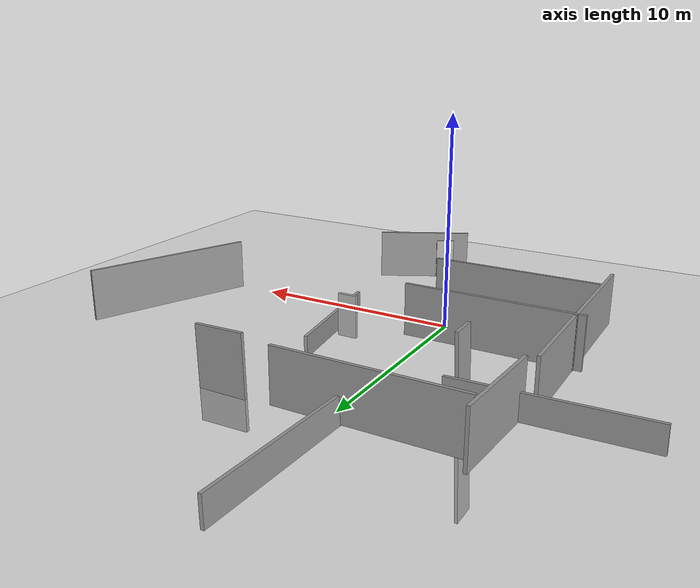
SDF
<sdf version="1.10">
 <world name="default">
  <plugin name="gz::sim::systems::Physics" filename="ignition-gazebo-physics-system"/>
  <plugin name="gz::sim::systems::Sensors" filename="gz-sim-sensors-system">
   <render_engine>ogre2</render_engine>
  </plugin>
  <plugin name="gz::sim::systems::Imu" filename="gz-sim-imu-system">
   <render_engine>ogre2</render_engine>
  </plugin>
  <plugin name="gz::sim::systems::SceneBroadcaster" filename="gz-sim-scene-broadcaster-system"/>
  <plugin name="gz::sim::systems::UserCommands" filename="gz-sim-user-commands-system"/>
  <physics name="default_physics" default="false" type="ode">
   <max_step_size>0.001</max_step_size>
   <real_time_factor>1</real_time_factor>
   <real_time_update_rate>1000</real_time_update_rate>
  </physics>
  <scene><ambient>1 1 1 1</ambient><background>1 1 1 1</background><shadows>false</shadows></scene>
  <spherical_coordinates>
   <surface_model>EARTH_WGS84</surface_model>
   <latitude_deg>43.5655</latitude_deg>
   <longitude_deg>1.474</longitude_deg>
   <elevation>150</elevation>
   <heading_deg>180</heading_deg>
  </spherical_coordinates>
  <gravity>0 0 -9.8000000000000007</gravity>
  <magnetic_field>6.0000000000000002e-06 2.3e-05 -4.1999999999999998e-05</magnetic_field>
  <atmosphere type="adiabatic"/>
  <audio><device>default</device></audio>
  <model name="ground_plane">
   <static>true</static>
   <link name="link">
    <collision name="collision">
     <geometry><plane><normal>0 0 0.001</normal><size>100 100</size></plane></geometry>
     <surface><friction><ode><mu>100</mu><mu2>50</mu2></ode></friction></surface>
    </collision>
    <visual name="visual">
     <cast_shadows>false</cast_shadows>
     <geometry><plane><normal>0 0 0.001</normal><size>100 100</size></plane></geometry>
     <material>
      <script><uri>file://media/materials/scripts/gazebo.material</uri><name>Gazebo/Grey</name></script>
     </material>
    </visual>
    <velocity_decay><linear>0</linear><angular>0</angular></velocity_decay>
    <inertial>
     <mass>1</mass>
     <inertia><ixx>0.001</ixx><ixy>0</ixy><ixz>0</ixz><iyy>0.001</iyy><iyz>0</iyz><izz>0.001</izz></inertia>
    </inertial>
   </link>
  </model>
  <model name="door">
   <link name="link_0">
    <visual name="visual">
     <pose>0 0 1 0 -0 0</pose>
     <geometry><box><size>0.90000000000000002 0.14999999999999999 2</size></box></geometry>
     <material>
      <script>
       <uri>model://door/materials/scripts</uri>
       <uri>model://door/materials/textures</uri>
       <name>door</name>
      </script>
     </material>
     <cast_shadows>false</cast_shadows>
    </visual>
    <collision name="collision">
     <pose>0 0 1 0 0 0</pose>
     <geometry><box><size>0.90000000000000002 0.14999999999999999 2</size></box></geometry>
    </collision>
    <inertial>
     <mass>1</mass>
     <inertia><ixx>1</ixx><ixy>0</ixy><ixz>0</ixz><iyy>1</iyy><iyz>0</iyz><izz>1</izz></inertia>
    </inertial>
   </link>
   <static>true</static>
   <pose>2.7999999999999998 -6.2000000000000002 0.330000 0 0 0.5</pose>
  </model>
  <model name="Untitled_0">
   <pose>-2.8796999454498291 3.2506458759307861 0 0 0 0</pose>
   <link name="Wall_0">
    <collision name="Wall_0_Collision">
     <geometry><box><size>8.25 0.14999999999999999 2.5</size></box></geometry>
     <pose>0 0 1.25 0 0 0</pose>
    </collision>
    <visual name="Wall_0_Visual">
     <pose>0 0 1.25 0 0 0</pose>
     <geometry><box><size>8.25 0.14999999999999999 2.5</size></box></geometry>
     <material>
      <script><uri>file://media/materials/scripts/gazebo.material</uri><name>Gazebo/Grey</name></script>
      <ambient>1 1 1 1</ambient>
     </material>
     <meta><layer>0</layer></meta>
    </visual>
    <pose>0 -1.5125 0 0 0 0</pose>
    <inertial>
     <mass>1</mass>
     <inertia><ixx>1</ixx><ixy>0</ixy><ixz>0</ixz><iyy>1</iyy><iyz>0</iyz><izz>1</izz></inertia>
    </inertial>
   </link>
   <static>true</static>
  </model>
  <model name="Untitled_00">
   <pose>-1.6222413778305054 12.220499992370605 0 0 0 0</pose>
   <link name="Wall_0">
    <collision name="Wall_0_Collision">
     <geometry><box><size>8.25 0.14999999999999999 2.5</size></box></geometry>
     <pose>0 0 1.25 0 0 0</pose>
    </collision>
    <visual name="Wall_0_Visual">
     <pose>0 0 1.25 0 0 0</pose>
     <geometry><box><size>8.25 0.14999999999999999 2.5</size></box></geometry>
     <material>
      <script><uri>file://media/materials/scripts/gazebo.material</uri><name>Gazebo/Grey</name></script>
      <ambient>1 1 1 1</ambient>
     </material>
     <meta><layer>0</layer></meta>
    </visual>
    <pose>0 -1.5125 0 0 0 0</pose>
    <inertial>
     <mass>1</mass>
     <inertia><ixx>1</ixx><ixy>0</ixy><ixz>0</ixz><iyy>1</iyy><iyz>0</iyz><izz>1</izz></inertia>
    </inertial>
   </link>
   <static>true</static>
  </model>
  <model name="Untitled_0023432">
   <pose>-2.220180 7.871160 -1.174150 -1.570000 1.530000 3.140000</pose>
   <link name="Wall_0">
    <collision name="Wall_0_Collision">
     <geometry><box><size>8.25 0.14999999999999999 1.2</size></box></geometry>
     <pose>0 0 1.25 0 0 0</pose>
    </collision>
    <visual name="Wall_0_Visual">
     <pose>0 0 1.25 0 0 0</pose>
     <geometry><box><size>8.25 0.14999999999999999 1.2</size></box></geometry>
     <material>
      <script><uri>file://media/materials/scripts/gazebo.material</uri><name>Gazebo/Grey</name></script>
      <ambient>1 1 1 1</ambient>
     </material>
     <meta><layer>0</layer></meta>
    </visual>
    <pose>0 -1.5125 0 0 0 0</pose>
    <inertial>
     <mass>1</mass>
     <inertia><ixx>1</ixx><ixy>0</ixy><ixz>0</ixz><iyy>1</iyy><iyz>0</iyz><izz>1</izz></inertia>
    </inertial>
   </link>
   <static>true</static>
  </model>
  <model name="Untitled_COPYCOPY0023432">
   <pose>0.920000 14.370000 -0.650000 -0.040000 0.030000 -1.570000</pose>
   <link name="Wall_0">
    <collision name="Wall_0_Collision">
     <geometry><box><size>8.25 0.14999999999999999 1.2</size></box></geometry>
     <pose>0 0 1.25 0 0 0</pose>
    </collision>
    <visual name="Wall_0_Visual">
     <pose>0 0 1.25 0 0 0</pose>
     <geometry><box><size>8.25 0.14999999999999999 1.2</size></box></geometry>
     <material>
      <script><uri>file://media/materials/scripts/gazebo.material</uri><name>Gazebo/Grey</name></script>
      <ambient>1 1 1 1</ambient>
     </material>
     <meta><layer>0</layer></meta>
    </visual>
    <pose>0 -1.5125 0 0 0 0</pose>
    <inertial>
     <mass>1</mass>
     <inertia><ixx>1</ixx><ixy>0</ixy><ixz>0</ixz><iyy>1</iyy><iyz>0</iyz><izz>1</izz></inertia>
    </inertial>
   </link>
   <static>true</static>
  </model>
  <model name="Untitled_00234323423">
   <pose>-7.284550 8.833700 -0.597577 0 0.020000 0</pose>
   <link name="Wall_0">
    <collision name="Wall_0_Collision">
     <geometry><box><size>8.25 0.14999999999999999 1.2</size></box></geometry>
     <pose>0 0 1.25 0 0 0</pose>
    </collision>
    <visual name="Wall_0_Visual">
     <pose>0 0 1.25 0 0 0</pose>
     <geometry><box><size>8.25 0.14999999999999999 1.2</size></box></geometry>
     <material>
      <script><uri>file://media/materials/scripts/gazebo.material</uri><name>Gazebo/Grey</name></script>
      <ambient>1 1 1 1</ambient>
     </material>
     <meta><layer>0</layer></meta>
    </visual>
    <pose>0 -1.5125 0 0 0 0</pose>
    <inertial>
     <mass>1</mass>
     <inertia><ixx>1</ixx><ixy>0</ixy><ixz>0</ixz><iyy>1</iyy><iyz>0</iyz><izz>1</izz></inertia>
    </inertial>
   </link>
   <static>true</static>
  </model>
  <model name="Untitled_COPY00234323423">
   <pose>4.730000 12.320000 -0.610000 0 0.020000 0</pose>
   <link name="Wall_0">
    <collision name="Wall_0_Collision">
     <geometry><box><size>2.25 0.14999999999999999 4.2</size></box></geometry>
     <pose>0 0 1.25 0 0 0</pose>
    </collision>
    <visual name="Wall_0_Visual">
     <pose>0 0 1.25 0 0 0</pose>
     <geometry><box><size>2.25 0.14999999999999999 4.2</size></box></geometry>
     <material>
      <script><uri>file://media/materials/scripts/gazebo.material</uri><name>Gazebo/Grey</name></script>
      <ambient>1 1 1 1</ambient>
     </material>
     <meta><layer>0</layer></meta>
    </visual>
    <pose>0 -1.5125 0 0 0 0</pose>
    <inertial>
     <mass>1</mass>
     <inertia><ixx>1</ixx><ixy>0</ixy><ixz>0</ixz><iyy>1</iyy><iyz>0</iyz><izz>1</izz></inertia>
    </inertial>
   </link>
   <static>true</static>
  </model>
  <model name="Untitled_0000">
   <pose>12.10936164855957 4.3820676803588867 0 0 0 1.1858199444936537</pose>
   <link name="Wall_0">
    <collision name="Wall_0_Collision">
     <geometry><box><size>8.25 0.14999999999999999 2.5</size></box></geometry>
     <pose>0 0 1.25 0 0 0</pose>
    </collision>
    <visual name="Wall_0_Visual">
     <pose>0 0 1.25 0 0 0</pose>
     <geometry><box><size>8.25 0.14999999999999999 2.5</size></box></geometry>
     <material>
      <script><uri>file://media/materials/scripts/gazebo.material</uri><name>Gazebo/Grey</name></script>
      <ambient>1 1 1 1</ambient>
     </material>
     <meta><layer>0</layer></meta>
    </visual>
    <pose>0 -1.5125 0 0 0 0</pose>
    <inertial>
     <mass>1</mass>
     <inertia><ixx>1</ixx><ixy>0</ixy><ixz>0</ixz><iyy>1</iyy><iyz>0</iyz><izz>1</izz></inertia>
    </inertial>
   </link>
   <static>true</static>
  </model>
  <model name="Untitled_000000">
   <pose>2.6718299388885498 3.0538311004638672 -0.73083400726318359 0 0 1.7129200219992189</pose>
   <link name="Wall_0">
    <collision name="Wall_0_Collision">
     <geometry><box><size>6.25 0.14999999999999999 1</size></box></geometry>
     <pose>0 0 1.25 0 0 0</pose>
    </collision>
    <visual name="Wall_0_Visual">
     <pose>0 0 1.25 0 0 0</pose>
     <geometry><box><size>6.25 0.14999999999999999 1</size></box></geometry>
     <material>
      <script><uri>file://media/materials/scripts/gazebo.material</uri><name>Gazebo/Grey</name></script>
      <ambient>1 1 1 1</ambient>
     </material>
     <meta><layer>0</layer></meta>
    </visual>
    <pose>0 -1.5125 0 0 0 0</pose>
    <inertial>
     <mass>1</mass>
     <inertia><ixx>1</ixx><ixy>0</ixy><ixz>0</ixz><iyy>1</iyy><iyz>0</iyz><izz>1</izz></inertia>
    </inertial>
   </link>
   <static>true</static>
  </model>
  <model name="Untitled_1">
   <pose>3.7195546627044678 -5.6231269836425781 0 0 0 0.47367498599227303</pose>
   <link name="Wall_2">
    <collision name="Wall_2_Collision">
     <geometry><box><size>4.75 0.14999999999999999 2.5</size></box></geometry>
     <pose>0 0 1.25 0 0 0</pose>
    </collision>
    <visual name="Wall_2_Visual">
     <pose>0 0 1.25 0 0 0</pose>
     <geometry><box><size>4.75 0.14999999999999999 2.5</size></box></geometry>
     <material>
      <script><uri>file://media/materials/scripts/gazebo.material</uri><name>Gazebo/Grey</name></script>
      <ambient>1 1 1 1</ambient>
     </material>
     <meta><layer>0</layer></meta>
    </visual>
    <pose>0 -1.0674999999999999 0 0 0 0</pose>
    <inertial>
     <mass>1</mass>
     <inertia><ixx>1</ixx><ixy>0</ixy><ixz>0</ixz><iyy>1</iyy><iyz>0</iyz><izz>1</izz></inertia>
    </inertial>
   </link>
   <static>true</static>
  </model>
  <model name="Untitled_11">
   <pose>-7.0675458908081055 9.2992439270019531 0 0 0 1.5099999974823035</pose>
   <link name="Wall_2">
    <collision name="Wall_2_Collision">
     <geometry><box><size>4.75 0.14999999999999999 2.5</size></box></geometry>
     <pose>0 0 1.25 0 0 0</pose>
    </collision>
    <visual name="Wall_2_Visual">
     <pose>0 0 1.25 0 0 0</pose>
     <geometry><box><size>4.75 0.14999999999999999 2.5</size></box></geometry>
     <material>
      <script><uri>file://media/materials/scripts/gazebo.material</uri><name>Gazebo/Grey</name></script>
      <ambient>1 1 1 1</ambient>
     </material>
     <meta><layer>0</layer></meta>
    </visual>
    <pose>0 -1.0674999999999999 0 0 0 0</pose>
    <inertial>
     <mass>1</mass>
     <inertia><ixx>1</ixx><ixy>0</ixy><ixz>0</ixz><iyy>1</iyy><iyz>0</iyz><izz>1</izz></inertia>
    </inertial>
   </link>
   <static>true</static>
  </model>
  <model name="Untitled_2">
   <pose>-5.4974799156188965 3.5681540966033949 0 0 0 1.9984014443252818e-15</pose>
   <link name="Wall_4">
    <collision name="Wall_4_Collision">
     <geometry><box><size>6.25 0.14999999999999999 2.5</size></box></geometry>
     <pose>0 0 1.25 0 0 0</pose>
    </collision>
    <visual name="Wall_4_Visual">
     <pose>0 0 1.25 0 0 0</pose>
     <geometry><box><size>6.25 0.14999999999999999 2.5</size></box></geometry>
     <material>
      <script><uri>file://media/materials/scripts/gazebo.material</uri><name>Gazebo/Grey</name></script>
      <ambient>1 1 1 1</ambient>
     </material>
     <meta><layer>0</layer></meta>
    </visual>
    <pose>-1.0774999999999999 0 0 0 0 1.5708</pose>
    <inertial>
     <mass>1</mass>
     <inertia><ixx>1</ixx><ixy>0</ixy><ixz>0</ixz><iyy>1</iyy><iyz>0</iyz><izz>1</izz></inertia>
    </inertial>
   </link>
   <static>true</static>
  </model>
  <model name="Untitled_0_clone">
   <pose>-2.5243799686431885 -1.0236749649047854 0 0 0 0</pose>
   <link name="Wall_0">
    <collision name="Wall_0_Collision">
     <geometry><box><size>8.25 0.14999999999999999 2.5</size></box></geometry>
     <pose>0 0 1.25 0 0 0</pose>
    </collision>
    <visual name="Wall_0_Visual">
     <pose>0 0 1.25 0 0 0</pose>
     <geometry><box><size>8.25 0.14999999999999999 2.5</size></box></geometry>
     <material>
      <script><uri>file://media/materials/scripts/gazebo.material</uri><name>Gazebo/Grey</name></script>
      <ambient>1 1 1 1</ambient>
     </material>
     <meta><layer>0</layer></meta>
    </visual>
    <pose>0 -1.5125 0 0 0 0</pose>
    <inertial>
     <mass>1</mass>
     <inertia><ixx>1</ixx><ixy>0</ixy><ixz>0</ixz><iyy>1</iyy><iyz>0</iyz><izz>1</izz></inertia>
    </inertial>
   </link>
   <static>true</static>
  </model>
  <model name="Untitled_2_clone">
   <pose>-5.5136198997497559 -1.1721292734146105 0 0 0 1.9984014443252818e-15</pose>
   <link name="Wall_4">
    <collision name="Wall_4_Collision">
     <geometry><box><size>6.25 0.14999999999999999 2.5</size></box></geometry>
     <pose>0 0 1.25 0 0 0</pose>
    </collision>
    <visual name="Wall_4_Visual">
     <pose>0 0 1.25 0 0 0</pose>
     <geometry><box><size>6.25 0.14999999999999999 2.5</size></box></geometry>
     <material>
      <script><uri>file://media/materials/scripts/gazebo.material</uri><name>Gazebo/Grey</name></script>
      <ambient>1 1 1 1</ambient>
     </material>
     <meta><layer>0</layer></meta>
    </visual>
    <pose>-1.0774999999999999 0 0 0 0 1.5708</pose>
    <inertial>
     <mass>1</mass>
     <inertia><ixx>1</ixx><ixy>0</ixy><ixz>0</ixz><iyy>1</iyy><iyz>0</iyz><izz>1</izz></inertia>
    </inertial>
   </link>
   <static>true</static>
  </model>
  <model name="door_wall9">
   <link name="link_0">
    <visual name="visual">
     <pose>0 0 1 0 -0 0</pose>
     <geometry><box><size>0.90000000000000002 0.14999999999999999 2</size></box></geometry>
     <material>
      <script>
       <uri>model://door/materials/scripts</uri>
       <uri>model://door/materials/textures</uri>
       <name>door</name>
      </script>
     </material>
     <cast_shadows>false</cast_shadows>
    </visual>
    <collision name="collision">
     <pose>0 0 1 0 0 0</pose>
     <geometry><box><size>0.90000000000000002 0.14999999999999999 2</size></box></geometry>
    </collision>
    <inertial>
     <mass>1</mass>
     <inertia><ixx>1</ixx><ixy>0</ixy><ixz>0</ixz><iyy>1</iyy><iyz>0</iyz><izz>1</izz></inertia>
    </inertial>
   </link>
   <static>true</static>
   <pose>3.0 4.0 0.33 0 0 0</pose>
  </model>
  <light name="sun" type="directional">
   <pose>0 0 10 0 0 0</pose>
   <cast_shadows>false</cast_shadows>
   <intensity>1</intensity>
   <direction>-0.5 -0.5 -1</direction>
   <diffuse>1 1 1 1</diffuse>
   <specular>0.200000003 0.200000003 0.200000003 1</specular>
   <attenuation>
    <range>1000</range>
    <linear>0.01</linear>
    <constant>0.90000000000000002</constant>
    <quadratic>0.001</quadratic>
   </attenuation>
   <spot><inner_angle>0</inner_angle><outer_angle>0</outer_angle><falloff>0</falloff></spot>
  </light>
 </world>
</sdf>
